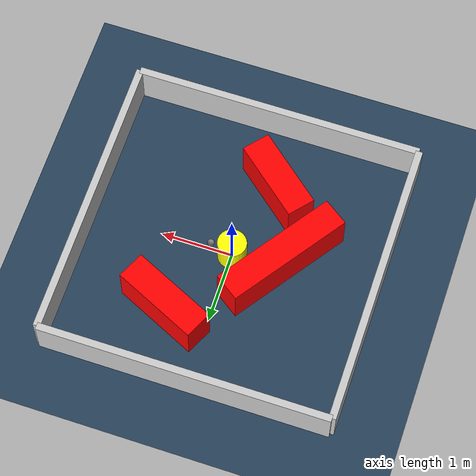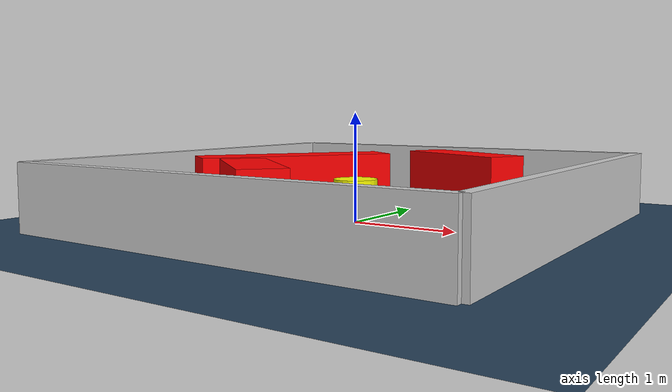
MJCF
<?xml version="1.0" ?>
<mujoco model="generated_environment">
  <option timestep="0.01" integrator="RK4" cone="elliptic"/>
  <default>
    <geom density="1"/>
  </default>
  <asset>
    <texture builtin="gradient" height="3072" rgb1="0.3 0.5 0.7" rgb2="0 0 0" type="skybox" width="512"/>
    <texture builtin="checker" height="300" mark="edge" markrgb="0.8 0.8 0.8" name="groundplane" rgb1="0.2 0.3 0.4" rgb2="0.1 0.2 0.3" type="2d" width="300"/>
    <material name="groundplane" reflectance="0.2" texrepeat="5 5" texture="groundplane" texuniform="true"/>
    <material name="robot" rgba="0.0 1.0 0.0 1"/>
  </asset>
  <worldbody>
    <light dir="0 0 -1" directional="true" pos="0 0 1.5"/>
    <geom condim="4" friction="1.0 0.005 0.001" material="groundplane" name="floor" size="0 0 0.05" type="plane"/>
    <body name="walls">
      <geom name="wall_1" condim="4" pos="-2.0 0.0 0.3" rgba="0.800000011920929 0.800000011920929 0.800000011920929 1.0" size="0.05 2.0 0.3" type="box"/>
      <geom name="wall_2" condim="4" pos="2.0 0.0 0.3" rgba="0.800000011920929 0.800000011920929 0.800000011920929 1.0" size="0.05 2.0 0.3" type="box"/>
      <geom name="wall_3" condim="4" pos="0.0 -2.0 0.3" rgba="0.800000011920929 0.800000011920929 0.800000011920929 1.0" size="2.0 0.05 0.3" type="box"/>
      <geom name="wall_4" condim="4" pos="0.0 2.0 0.3" rgba="0.800000011920929 0.800000011920929 0.800000011920929 1.0" size="2.0 0.05 0.3" type="box"/>
    </body>
    <body name="robot">
      <joint name="joint_x" type="slide" pos="0 0 0" axis="1 0 0"/>
      <joint name="joint_y" type="slide" pos="0 0 0" axis="0 1 0"/>
      <geom name="robot" type="sphere" pos="0.3 0.0 0.2" size="0.05" mass="5." friction="1.0 0.005 0.0001" condim="4" rgba="0.5 0.5 0.5 1.0"/>
      <site name="sensor_ball"/>
    </body>
    <body name="obstacle_movable_1">
      <geom name="obstacle_movable_1" condim="4" pos="0.0 0.0 0.2" euler="0 0 0.0" friction="1.0 0.005 0.001" rgba="1.0 1.0 0.0 1.0" size="0.2 0.2 0.0" type="cylinder" mass="0.1"/>
      <joint type="free"/>
    </body>
    <body name="obstacle_2_static">
      <geom name="obstacle_2_static" condim="4" pos="0.5753353299265163 1.0670400300639986 0.3" euler="0 0 155.1262977163433" friction="1.0 0.005 0.001" rgba="1 0 0 1" size="0.6190593095100003 0.2 0.3" type="box"/>
    </body>
    <body name="obstacle_3_static">
      <geom name="obstacle_3_static" condim="4" pos="-0.6760996575444732 -0.035690216106170514 0.3" euler="0 0 235.27402021684136" friction="1.0 0.005 0.001" rgba="1 0 0 1" size="0.9119797255813995 0.2 0.3" type="box"/>
    </body>
    <body name="obstacle_4_static">
      <geom name="obstacle_4_static" condim="4" pos="-0.29649480503738146 -1.0747749463090448 0.3" euler="0 0 139.7658781222143" friction="1.0 0.005 0.001" rgba="1 0 0 1" size="0.5790745884440435 0.2 0.3" type="box"/>
    </body>
  </worldbody>
  <actuator>
    <motor name="actuator_x" joint="joint_x" gear="1" ctrlrange="-1 1"/>
    <motor name="actuator_y" joint="joint_y" gear="1" ctrlrange="-1 1"/>
  </actuator>
</mujoco>
